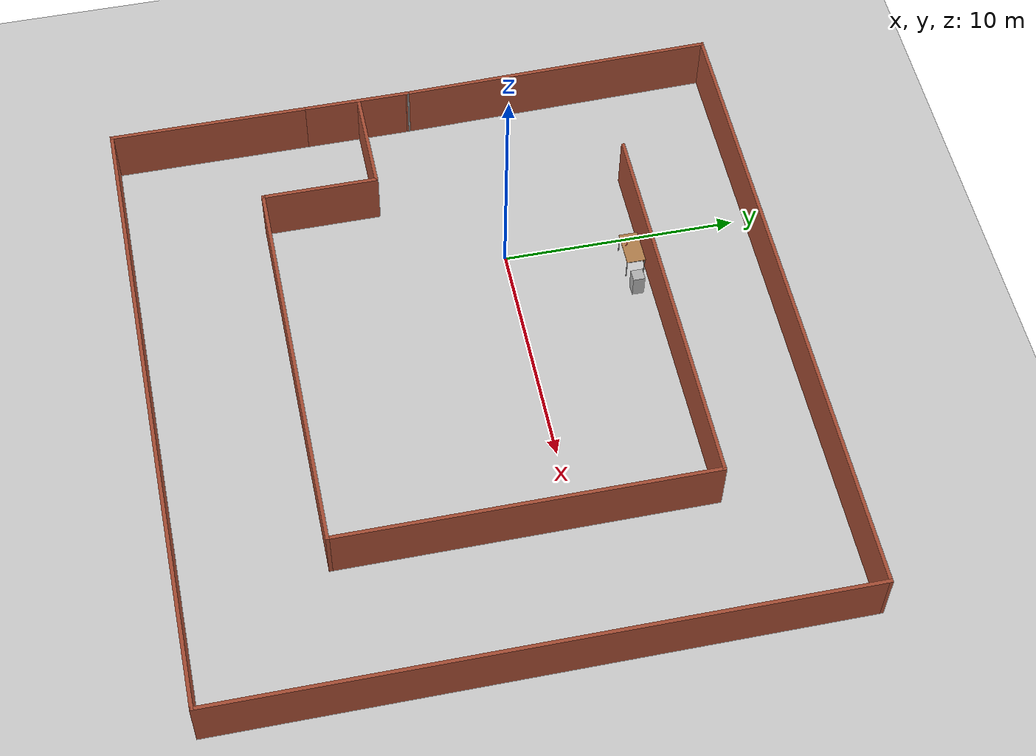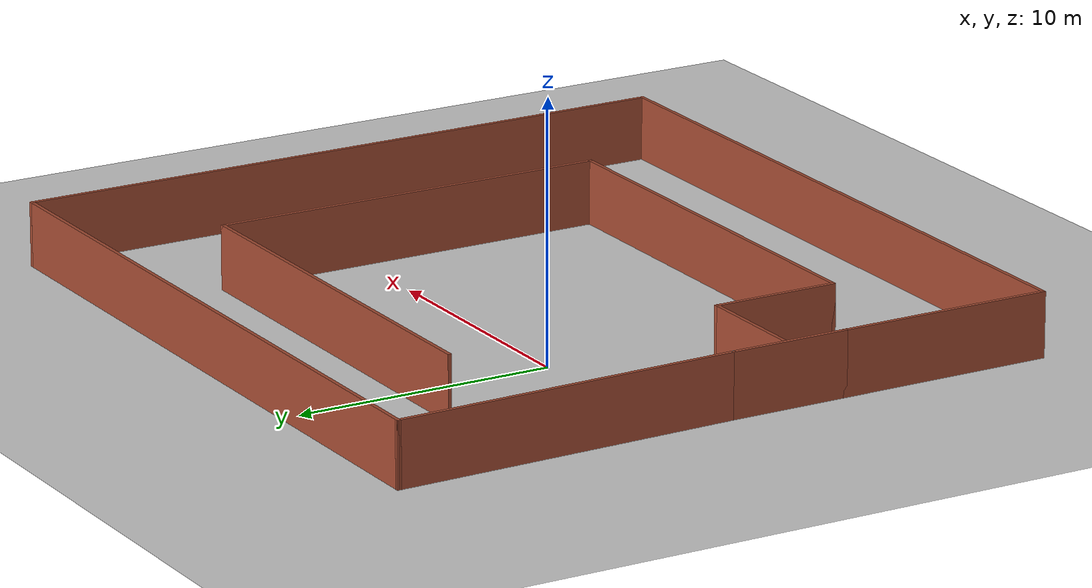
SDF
<sdf version="1.6">
 <world name="default">
  <model name="ground_plane">
   <static>1</static>
   <link name="link">
    <collision name="collision">
     <geometry><plane><normal>0 0 1</normal><size>100 100</size></plane></geometry>
     <surface><friction><ode><mu>100</mu><mu2>50</mu2></ode></friction></surface>
    </collision>
    <visual name="visual">
     <cast_shadows>0</cast_shadows>
     <geometry><plane><normal>0 0 1</normal><size>100 100</size></plane></geometry>
     <material>
      <script><uri>file://media/materials/scripts/gazebo.material</uri><name>Gazebo/Grey</name></script>
     </material>
    </visual>
   </link>
  </model>
  <model name="mazeWorld">
   <pose>5.63635 -2.54328 0 0 -0 0</pose>
   <link name="Wall_10">
    <collision name="Wall_10_Collision">
     <geometry><box><size>13.5523 0.15 2.5</size></box></geometry>
     <pose>0 0 1.25 0 -0 0</pose>
    </collision>
    <visual name="Wall_10_Visual">
     <pose>0 0 1.25 0 -0 0</pose>
     <geometry><box><size>13.5523 0.15 2.5</size></box></geometry>
     <material>
      <script><uri>file://media/materials/scripts/gazebo.material</uri><name>Gazebo/Bricks</name></script>
      <ambient>1 1 1 1</ambient>
     </material>
     <meta><layer>0</layer></meta>
    </visual>
    <pose>-13.6743 6.47431 0 0 -0 -1.55214</pose>
   </link>
   <link name="Wall_12">
    <collision name="Wall_12_Collision">
     <geometry><box><size>16.75 0.15 2.5</size></box></geometry>
     <pose>0 0 1.25 0 -0 0</pose>
    </collision>
    <visual name="Wall_12_Visual">
     <pose>0 0 1.25 0 -0 0</pose>
     <geometry><box><size>16.75 0.15 2.5</size></box></geometry>
     <material>
      <script><uri>file://media/materials/scripts/gazebo.material</uri><name>Gazebo/Bricks</name></script>
      <ambient>1 1 1 1</ambient>
     </material>
     <meta><layer>0</layer></meta>
    </visual>
    <pose>-0.493258 8.36187 0 0 -0 0</pose>
   </link>
   <link name="Wall_13">
    <collision name="Wall_13_Collision">
     <geometry><box><size>15.75 0.15 2.5</size></box></geometry>
     <pose>0 0 1.25 0 -0 0</pose>
    </collision>
    <visual name="Wall_13_Visual">
     <pose>0 0 1.25 0 -0 0</pose>
     <geometry><box><size>15.75 0.15 2.5</size></box></geometry>
     <material>
      <script><uri>file://media/materials/scripts/gazebo.material</uri><name>Gazebo/Bricks</name></script>
      <ambient>1 1 1 1</ambient>
     </material>
     <meta><layer>0</layer></meta>
    </visual>
    <pose>7.80674 0.561867 0 0 -0 -1.5708</pose>
   </link>
   <link name="Wall_14">
    <collision name="Wall_14_Collision">
     <geometry><box><size>17 0.15 2.5</size></box></geometry>
     <pose>0 0 1.25 0 -0 0</pose>
    </collision>
    <visual name="Wall_14_Visual">
     <pose>0 0 1.25 0 -0 0</pose>
     <geometry><box><size>17 0.15 2.5</size></box></geometry>
     <material>
      <script><uri>file://media/materials/scripts/gazebo.material</uri><name>Gazebo/Bricks</name></script>
      <ambient>1 1 1 1</ambient>
     </material>
     <meta><layer>0</layer></meta>
    </visual>
    <pose>-0.618258 -7.23813 0 0 -0 3.14159</pose>
   </link>
   <link name="Wall_15">
    <collision name="Wall_15_Collision">
     <geometry><box><size>5 0.15 2.5</size></box></geometry>
     <pose>0 0 1.25 0 -0 0</pose>
    </collision>
    <visual name="Wall_15_Visual">
     <pose>0 0 1.25 0 -0 0</pose>
     <geometry><box><size>5 0.15 2.5</size></box></geometry>
     <material>
      <script><uri>file://media/materials/scripts/gazebo.material</uri><name>Gazebo/Bricks</name></script>
      <ambient>1 1 1 1</ambient>
     </material>
     <meta><layer>0</layer></meta>
    </visual>
    <pose>-9.04326 -4.81313 0 0 -0 1.5708</pose>
   </link>
   <link name="Wall_16">
    <collision name="Wall_16_Collision">
     <geometry><box><size>4.5 0.15 2.5</size></box></geometry>
     <pose>0 0 1.25 0 -0 0</pose>
    </collision>
    <visual name="Wall_16_Visual">
     <pose>0 0 1.25 0 -0 0</pose>
     <geometry><box><size>4.5 0.15 2.5</size></box></geometry>
     <material>
      <script><uri>file://media/materials/scripts/gazebo.material</uri><name>Gazebo/Bricks</name></script>
      <ambient>1 1 1 1</ambient>
     </material>
     <meta><layer>0</layer></meta>
    </visual>
    <pose>-11.2183 -2.38813 0 0 -0 3.14159</pose>
   </link>
   <link name="Wall_2">
    <collision name="Wall_2_Collision">
     <geometry><box><size>4.75 0.15 2.5</size></box></geometry>
     <pose>0 0 1.25 0 -0 0</pose>
    </collision>
    <visual name="Wall_2_Visual">
     <pose>0 0 1.25 0 -0 0</pose>
     <geometry><box><size>4.75 0.15 2.5</size></box></geometry>
     <material>
      <script><uri>file://media/materials/scripts/gazebo.material</uri><name>Gazebo/Bricks</name></script>
      <ambient>1 1 1 1</ambient>
     </material>
     <meta><layer>0</layer></meta>
    </visual>
    <pose>-13.5493 -2.52569 0 0 -0 1.5708</pose>
   </link>
   <link name="Wall_3">
    <collision name="Wall_3_Collision">
     <geometry><box><size>0.15 0.15 2.5</size></box></geometry>
     <pose>0 0 1.25 0 -0 0</pose>
    </collision>
    <visual name="Wall_3_Visual">
     <pose>0 0 1.25 0 -0 0</pose>
     <geometry><box><size>0.15 0.15 2.5</size></box></geometry>
     <material>
      <script><uri>file://media/materials/scripts/gazebo.material</uri><name>Gazebo/Grey</name></script>
      <ambient>1 1 1 1</ambient>
     </material>
     <meta><layer>0</layer></meta>
    </visual>
    <pose>-13.5493 -0.225692 0 0 -0 0</pose>
   </link>
   <link name="Wall_4">
    <collision name="Wall_4_Collision">
     <geometry><box><size>0.15 0.15 2.5</size></box></geometry>
     <pose>0 0 1.25 0 -0 0</pose>
    </collision>
    <visual name="Wall_4_Visual">
     <pose>0 0 1.25 0 -0 0</pose>
     <geometry><box><size>0.15 0.15 2.5</size></box></geometry>
     <material>
      <script><uri>file://media/materials/scripts/gazebo.material</uri><name>Gazebo/Grey</name></script>
      <ambient>1 1 1 1</ambient>
     </material>
     <meta><layer>0</layer></meta>
    </visual>
    <pose>-13.5493 -0.225692 0 0 -0 0</pose>
   </link>
   <link name="Wall_6">
    <collision name="Wall_6_Collision">
     <geometry><box><size>8.5 0.15 2.5</size></box></geometry>
     <pose>0 0 1.25 0 -0 0</pose>
    </collision>
    <visual name="Wall_6_Visual">
     <pose>0 0 1.25 0 -0 0</pose>
     <geometry><box><size>8.5 0.15 2.5</size></box></geometry>
     <material>
      <script><uri>file://media/materials/scripts/gazebo.material</uri><name>Gazebo/Bricks</name></script>
      <ambient>1 1 1 1</ambient>
     </material>
     <meta><layer>0</layer></meta>
    </visual>
    <pose>-13.5493 -9.00069 0 0 -0 -1.5708</pose>
   </link>
   <link name="Wall_7">
    <collision name="Wall_7_Collision">
     <geometry><box><size>27.5 0.15 2.5</size></box></geometry>
     <pose>0 0 1.25 0 -0 0</pose>
    </collision>
    <visual name="Wall_7_Visual">
     <pose>0 0 1.25 0 -0 0</pose>
     <geometry><box><size>27.5 0.15 2.5</size></box></geometry>
     <material>
      <script><uri>file://media/materials/scripts/gazebo.material</uri><name>Gazebo/Bricks</name></script>
      <ambient>1 1 1 1</ambient>
     </material>
     <meta><layer>0</layer></meta>
    </visual>
    <pose>0.125693 -13.1757 0 0 -0 0</pose>
   </link>
   <link name="Wall_8">
    <collision name="Wall_8_Collision">
     <geometry><box><size>26.5 0.15 2.5</size></box></geometry>
     <pose>0 0 1.25 0 -0 0</pose>
    </collision>
    <visual name="Wall_8_Visual">
     <pose>0 0 1.25 0 -0 0</pose>
     <geometry><box><size>26.5 0.15 2.5</size></box></geometry>
     <material>
      <script><uri>file://media/materials/scripts/gazebo.material</uri><name>Gazebo/Bricks</name></script>
      <ambient>1 1 1 1</ambient>
     </material>
     <meta><layer>0</layer></meta>
    </visual>
    <pose>13.8007 -0.000692 0 0 -0 1.5708</pose>
   </link>
   <link name="Wall_9">
    <collision name="Wall_9_Collision">
     <geometry><box><size>27.75 0.15 2.5</size></box></geometry>
     <pose>0 0 1.25 0 -0 0</pose>
    </collision>
    <visual name="Wall_9_Visual">
     <pose>0 0 1.25 0 -0 0</pose>
     <geometry><box><size>27.75 0.15 2.5</size></box></geometry>
     <material>
      <script><uri>file://media/materials/scripts/gazebo.material</uri><name>Gazebo/Bricks</name></script>
      <ambient>1 1 1 1</ambient>
     </material>
     <meta><layer>0</layer></meta>
    </visual>
    <pose>0.000693 13.1743 0 0 -0 3.14159</pose>
   </link>
   <static>1</static>
  </model>
  <model name="table">
   <static>1</static>
   <link name="link">
    <collision name="surface">
     <pose>0 0 1 0 -0 0</pose>
     <geometry><box><size>1.5 0.8 0.03</size></box></geometry>
     <surface><friction><ode><mu>0.6</mu><mu2>0.6</mu2></ode></friction></surface>
    </collision>
    <visual name="visual1">
     <pose>0 0 1 0 -0 0</pose>
     <geometry><box><size>1.5 0.8 0.03</size></box></geometry>
     <material>
      <script><uri>file://media/materials/scripts/gazebo.material</uri><name>Gazebo/Wood</name></script>
     </material>
    </visual>
    <collision name="front_left_leg">
     <pose>0.68 0.38 0.5 0 -0 0</pose>
     <geometry><cylinder><radius>0.02</radius><length>1</length></cylinder></geometry>
    </collision>
    <visual name="front_left_leg">
     <pose>0.68 0.38 0.5 0 -0 0</pose>
     <geometry><cylinder><radius>0.02</radius><length>1</length></cylinder></geometry>
     <material>
      <script><uri>file://media/materials/scripts/gazebo.material</uri><name>Gazebo/Grey</name></script>
     </material>
    </visual>
    <collision name="front_right_leg">
     <pose>0.68 -0.38 0.5 0 -0 0</pose>
     <geometry><cylinder><radius>0.02</radius><length>1</length></cylinder></geometry>
    </collision>
    <visual name="front_right_leg">
     <pose>0.68 -0.38 0.5 0 -0 0</pose>
     <geometry><cylinder><radius>0.02</radius><length>1</length></cylinder></geometry>
     <material>
      <script><uri>file://media/materials/scripts/gazebo.material</uri><name>Gazebo/Grey</name></script>
     </material>
    </visual>
    <collision name="back_right_leg">
     <pose>-0.68 -0.38 0.5 0 -0 0</pose>
     <geometry><cylinder><radius>0.02</radius><length>1</length></cylinder></geometry>
    </collision>
    <visual name="back_right_leg">
     <pose>-0.68 -0.38 0.5 0 -0 0</pose>
     <geometry><cylinder><radius>0.02</radius><length>1</length></cylinder></geometry>
     <material>
      <script><uri>file://media/materials/scripts/gazebo.material</uri><name>Gazebo/Grey</name></script>
     </material>
    </visual>
    <collision name="back_left_leg">
     <pose>-0.68 0.38 0.5 0 -0 0</pose>
     <geometry><cylinder><radius>0.02</radius><length>1</length></cylinder></geometry>
    </collision>
    <visual name="back_left_leg">
     <pose>-0.68 0.38 0.5 0 -0 0</pose>
     <geometry><cylinder><radius>0.02</radius><length>1</length></cylinder></geometry>
     <material>
      <script><uri>file://media/materials/scripts/gazebo.material</uri><name>Gazebo/Grey</name></script>
     </material>
    </visual>
   </link>
   <pose>1.21515 5.225 0 0 -0 0</pose>
  </model>
  <model name="cans">
   <link name="link">
    <inertial>
     <mass>0.362409</mass>
     <inertia>
      <ixx>0.00022647</ixx>
      <ixy>0</ixy>
      <ixz>0</ixz>
      <iyy>0.00022647</iyy>
      <iyz>0</iyz>
      <izz>0.0001015</izz>
     </inertia>
     <pose>0 0 0.2 0 -0 0</pose>
    </inertial>
    <self_collide>1</self_collide>
    <kinematic>1</kinematic>
    <visual name="ModelPreview_8::link::visual_1">
     <geometry><cylinder><radius>0.0236665</radius><length>0.0762781</length></cylinder></geometry>
     <material>
      <script><name>Gazebo/Grey</name><uri>file://media/materials/scripts/gazebo.material</uri></script>
      <shader type="vertex"><normal_map>__default__</normal_map></shader>
      <ambient>1 0.3 0.3 1</ambient>
      <diffuse>0.7 0.7 0.7 1</diffuse>
      <specular>0.01 0.01 0.01 1</specular>
      <emissive>0 0 0 1</emissive>
     </material>
    </visual>
    <visual name="visual">
     <geometry><cylinder><radius>0.0236665</radius><length>0.0762781</length></cylinder></geometry>
     <material>
      <script><name>Gazebo/Grey</name><uri>file://media/materials/scripts/gazebo.material</uri></script>
      <shader type="vertex"><normal_map>__default__</normal_map></shader>
      <ambient>1 0.3 0.3 1</ambient>
      <diffuse>0.7 0.7 0.7 1</diffuse>
      <specular>0.01 0.01 0.01 1</specular>
      <emissive>0 0 0 1</emissive>
     </material>
    </visual>
    <collision name="collision">
     <geometry><cylinder><radius>0.023667</radius><length>0.076278</length></cylinder></geometry>
     <surface>
      <friction>
       <ode><mu>1</mu><mu2>1</mu2><fdir1>0 0 0</fdir1><slip1>0</slip1><slip2>0</slip2></ode>
       <torsional>
        <coefficient>1</coefficient>
        <patch_radius>0</patch_radius>
        <surface_radius>0</surface_radius>
        <use_patch_radius>1</use_patch_radius>
        <ode><slip>0</slip></ode>
       </torsional>
      </friction>
      <bounce><restitution_coefficient>0</restitution_coefficient><threshold>1e+06</threshold></bounce>
      <contact>
       <collide_without_contact>0</collide_without_contact>
       <collide_without_contact_bitmask>1</collide_without_contact_bitmask>
       <collide_bitmask>1</collide_bitmask>
       <ode>
        <soft_cfm>0</soft_cfm>
        <soft_erp>0.2</soft_erp>
        <kp>1e+13</kp>
        <kd>1</kd>
        <max_vel>0.01</max_vel>
        <min_depth>0</min_depth>
       </ode>
       <bullet>
        <split_impulse>1</split_impulse>
        <split_impulse_penetration_threshold>-0.01</split_impulse_penetration_threshold>
        <soft_cfm>0</soft_cfm>
        <soft_erp>0.2</soft_erp>
        <kp>1e+13</kp>
        <kd>1</kd>
       </bullet>
      </contact>
     </surface>
    </collision>
   </link>
   <static>0</static>
   <pose>0.769898 5.0995 1.05 0 -0 0</pose>
  </model>
  <model name="cans_0">
   <link name="link">
    <inertial>
     <mass>0.362409</mass>
     <inertia>
      <ixx>0.00022647</ixx>
      <ixy>0</ixy>
      <ixz>0</ixz>
      <iyy>0.00022647</iyy>
      <iyz>0</iyz>
      <izz>0.0001015</izz>
     </inertia>
     <pose>0 0 0.2 0 -0 0</pose>
    </inertial>
    <self_collide>1</self_collide>
    <kinematic>1</kinematic>
    <visual name="ModelPreview_8::link::visual_1">
     <geometry><cylinder><radius>0.0236665</radius><length>0.0762781</length></cylinder></geometry>
     <material>
      <script><name>Gazebo/Grey</name><uri>file://media/materials/scripts/gazebo.material</uri></script>
      <shader type="vertex"><normal_map>__default__</normal_map></shader>
      <ambient>1 0.3 0.3 1</ambient>
      <diffuse>0.7 0.7 0.7 1</diffuse>
      <specular>0.01 0.01 0.01 1</specular>
      <emissive>0 0 0 1</emissive>
     </material>
    </visual>
    <visual name="visual">
     <geometry><cylinder><radius>0.0236665</radius><length>0.0762781</length></cylinder></geometry>
     <material>
      <script><name>Gazebo/Grey</name><uri>file://media/materials/scripts/gazebo.material</uri></script>
      <shader type="vertex"><normal_map>__default__</normal_map></shader>
      <ambient>1 0.3 0.3 1</ambient>
      <diffuse>0.7 0.7 0.7 1</diffuse>
      <specular>0.01 0.01 0.01 1</specular>
      <emissive>0 0 0 1</emissive>
     </material>
    </visual>
    <collision name="collision">
     <geometry><cylinder><radius>0.023667</radius><length>0.076278</length></cylinder></geometry>
     <surface>
      <friction>
       <ode><mu>1</mu><mu2>1</mu2><fdir1>0 0 0</fdir1><slip1>0</slip1><slip2>0</slip2></ode>
       <torsional>
        <coefficient>1</coefficient>
        <patch_radius>0</patch_radius>
        <surface_radius>0</surface_radius>
        <use_patch_radius>1</use_patch_radius>
        <ode><slip>0</slip></ode>
       </torsional>
      </friction>
      <bounce><restitution_coefficient>0</restitution_coefficient><threshold>1e+06</threshold></bounce>
      <contact>
       <collide_without_contact>0</collide_without_contact>
       <collide_without_contact_bitmask>1</collide_without_contact_bitmask>
       <collide_bitmask>1</collide_bitmask>
       <ode>
        <soft_cfm>0</soft_cfm>
        <soft_erp>0.2</soft_erp>
        <kp>1e+13</kp>
        <kd>1</kd>
        <max_vel>0.01</max_vel>
        <min_depth>0</min_depth>
       </ode>
       <bullet>
        <split_impulse>1</split_impulse>
        <split_impulse_penetration_threshold>-0.01</split_impulse_penetration_threshold>
        <soft_cfm>0</soft_cfm>
        <soft_erp>0.2</soft_erp>
        <kp>1e+13</kp>
        <kd>1</kd>
       </bullet>
      </contact>
     </surface>
    </collision>
   </link>
   <static>0</static>
   <pose>0.881663 4.99702 1.05 0 -0 0</pose>
  </model>
  <model name="cans_1">
   <link name="link">
    <inertial>
     <mass>0.362409</mass>
     <inertia>
      <ixx>0.00022647</ixx>
      <ixy>0</ixy>
      <ixz>0</ixz>
      <iyy>0.00022647</iyy>
      <iyz>0</iyz>
      <izz>0.0001015</izz>
     </inertia>
     <pose>0 0 0.2 0 -0 0</pose>
    </inertial>
    <self_collide>1</self_collide>
    <kinematic>1</kinematic>
    <visual name="ModelPreview_8::link::visual_1">
     <geometry><cylinder><radius>0.0236665</radius><length>0.0762781</length></cylinder></geometry>
     <material>
      <script><name>Gazebo/Grey</name><uri>file://media/materials/scripts/gazebo.material</uri></script>
      <shader type="vertex"><normal_map>__default__</normal_map></shader>
      <ambient>1 0.3 0.3 1</ambient>
      <diffuse>0.7 0.7 0.7 1</diffuse>
      <specular>0.01 0.01 0.01 1</specular>
      <emissive>0 0 0 1</emissive>
     </material>
    </visual>
    <visual name="visual">
     <geometry><cylinder><radius>0.0236665</radius><length>0.0762781</length></cylinder></geometry>
     <material>
      <script><name>Gazebo/Grey</name><uri>file://media/materials/scripts/gazebo.material</uri></script>
      <shader type="vertex"><normal_map>__default__</normal_map></shader>
      <ambient>1 0.3 0.3 1</ambient>
      <diffuse>0.7 0.7 0.7 1</diffuse>
      <specular>0.01 0.01 0.01 1</specular>
      <emissive>0 0 0 1</emissive>
     </material>
    </visual>
    <collision name="collision">
     <geometry><cylinder><radius>0.023667</radius><length>0.076278</length></cylinder></geometry>
     <surface>
      <friction>
       <ode><mu>1</mu><mu2>1</mu2><fdir1>0 0 0</fdir1><slip1>0</slip1><slip2>0</slip2></ode>
       <torsional>
        <coefficient>1</coefficient>
        <patch_radius>0</patch_radius>
        <surface_radius>0</surface_radius>
        <use_patch_radius>1</use_patch_radius>
        <ode><slip>0</slip></ode>
       </torsional>
      </friction>
      <bounce><restitution_coefficient>0</restitution_coefficient><threshold>1e+06</threshold></bounce>
      <contact>
       <collide_without_contact>0</collide_without_contact>
       <collide_without_contact_bitmask>1</collide_without_contact_bitmask>
       <collide_bitmask>1</collide_bitmask>
       <ode>
        <soft_cfm>0</soft_cfm>
        <soft_erp>0.2</soft_erp>
        <kp>1e+13</kp>
        <kd>1</kd>
        <max_vel>0.01</max_vel>
        <min_depth>0</min_depth>
       </ode>
       <bullet>
        <split_impulse>1</split_impulse>
        <split_impulse_penetration_threshold>-0.01</split_impulse_penetration_threshold>
        <soft_cfm>0</soft_cfm>
        <soft_erp>0.2</soft_erp>
        <kp>1e+13</kp>
        <kd>1</kd>
       </bullet>
      </contact>
     </surface>
    </collision>
   </link>
   <static>0</static>
   <pose>1.0184 5.04738 1.05 0 -0 0</pose>
  </model>
  <model name="cans_2">
   <link name="link">
    <inertial>
     <mass>0.362409</mass>
     <inertia>
      <ixx>0.00022647</ixx>
      <ixy>0</ixy>
      <ixz>0</ixz>
      <iyy>0.00022647</iyy>
      <iyz>0</iyz>
      <izz>0.0001015</izz>
     </inertia>
     <pose>0 0 0.2 0 -0 0</pose>
    </inertial>
    <self_collide>1</self_collide>
    <kinematic>1</kinematic>
    <visual name="ModelPreview_8::link::visual_1">
     <geometry><cylinder><radius>0.0236665</radius><length>0.0762781</length></cylinder></geometry>
     <material>
      <script><name>Gazebo/Grey</name><uri>file://media/materials/scripts/gazebo.material</uri></script>
      <shader type="vertex"><normal_map>__default__</normal_map></shader>
      <ambient>1 0.3 0.3 1</ambient>
      <diffuse>0.7 0.7 0.7 1</diffuse>
      <specular>0.01 0.01 0.01 1</specular>
      <emissive>0 0 0 1</emissive>
     </material>
    </visual>
    <visual name="visual">
     <geometry><cylinder><radius>0.0236665</radius><length>0.0762781</length></cylinder></geometry>
     <material>
      <script><name>Gazebo/Grey</name><uri>file://media/materials/scripts/gazebo.material</uri></script>
      <shader type="vertex"><normal_map>__default__</normal_map></shader>
      <ambient>1 0.3 0.3 1</ambient>
      <diffuse>0.7 0.7 0.7 1</diffuse>
      <specular>0.01 0.01 0.01 1</specular>
      <emissive>0 0 0 1</emissive>
     </material>
    </visual>
    <collision name="collision">
     <geometry><cylinder><radius>0.023667</radius><length>0.076278</length></cylinder></geometry>
     <surface>
      <friction>
       <ode><mu>1</mu><mu2>1</mu2><fdir1>0 0 0</fdir1><slip1>0</slip1><slip2>0</slip2></ode>
       <torsional>
        <coefficient>1</coefficient>
        <patch_radius>0</patch_radius>
        <surface_radius>0</surface_radius>
        <use_patch_radius>1</use_patch_radius>
        <ode><slip>0</slip></ode>
       </torsional>
      </friction>
      <bounce><restitution_coefficient>0</restitution_coefficient><threshold>1e+06</threshold></bounce>
      <contact>
       <collide_without_contact>0</collide_without_contact>
       <collide_without_contact_bitmask>1</collide_without_contact_bitmask>
       <collide_bitmask>1</collide_bitmask>
       <ode>
        <soft_cfm>0</soft_cfm>
        <soft_erp>0.2</soft_erp>
        <kp>1e+13</kp>
        <kd>1</kd>
        <max_vel>0.01</max_vel>
        <min_depth>0</min_depth>
       </ode>
       <bullet>
        <split_impulse>1</split_impulse>
        <split_impulse_penetration_threshold>-0.01</split_impulse_penetration_threshold>
        <soft_cfm>0</soft_cfm>
        <soft_erp>0.2</soft_erp>
        <kp>1e+13</kp>
        <kd>1</kd>
       </bullet>
      </contact>
     </surface>
    </collision>
   </link>
   <static>0</static>
   <pose>1.06636 4.99391 1.05 0 -0 0</pose>
  </model>
  <model name="decoy">
   <link name="link">
    <inertial>
     <mass>10</mass>
     <inertia>
      <ixx>0.00022647</ixx>
      <ixy>0</ixy>
      <ixz>0</ixz>
      <iyy>0.00022647</iyy>
      <iyz>0</iyz>
      <izz>0.0001015</izz>
     </inertia>
     <pose>0 0 1 0 -0 0</pose>
    </inertial>
    <self_collide>1</self_collide>
    <kinematic>1</kinematic>
    <visual name="visual">
     <geometry><mesh><uri>model://decoys/meshes/decoymesh.dae</uri><scale>1 1 1</scale></mesh></geometry>
     <material>
      <script>
       <uri>model://decoys/materials/scripts</uri>
       <uri>model://decoys/materials/textures</uri>
       <name>decoy</name>
      </script>
      <shader type="vertex"><normal_map>__default__</normal_map></shader>
      <ambient>1 0.3 0.3 1</ambient>
      <diffuse>0.7 0.7 0.7 1</diffuse>
      <specular>0.01 0.01 0.01 1</specular>
      <emissive>0 0 0 1</emissive>
     </material>
    </visual>
    <collision name="collision">
     <geometry><mesh><uri>model://decoys/meshes/decoymesh.dae</uri><scale>1 1 1</scale></mesh></geometry>
     <surface>
      <friction>
       <ode><mu>1</mu><mu2>1</mu2><fdir1>0 0 0</fdir1><slip1>0</slip1><slip2>0</slip2></ode>
       <torsional>
        <coefficient>1</coefficient>
        <patch_radius>0</patch_radius>
        <surface_radius>0</surface_radius>
        <use_patch_radius>1</use_patch_radius>
        <ode><slip>0</slip></ode>
       </torsional>
      </friction>
      <bounce><restitution_coefficient>0</restitution_coefficient><threshold>1e+06</threshold></bounce>
      <contact>
       <collide_without_contact>0</collide_without_contact>
       <collide_without_contact_bitmask>1</collide_without_contact_bitmask>
       <collide_bitmask>1</collide_bitmask>
       <ode>
        <soft_cfm>0</soft_cfm>
        <soft_erp>0.2</soft_erp>
        <kp>1e+13</kp>
        <kd>1</kd>
        <max_vel>0.01</max_vel>
        <min_depth>0</min_depth>
       </ode>
       <bullet>
        <split_impulse>1</split_impulse>
        <split_impulse_penetration_threshold>-0.01</split_impulse_penetration_threshold>
        <soft_cfm>0</soft_cfm>
        <soft_erp>0.2</soft_erp>
        <kp>1e+13</kp>
        <kd>1</kd>
       </bullet>
      </contact>
     </surface>
    </collision>
   </link>
   <static>0</static>
   <pose>3 5 1 0 -0 0</pose>
  </model>
 </world>
</sdf>
